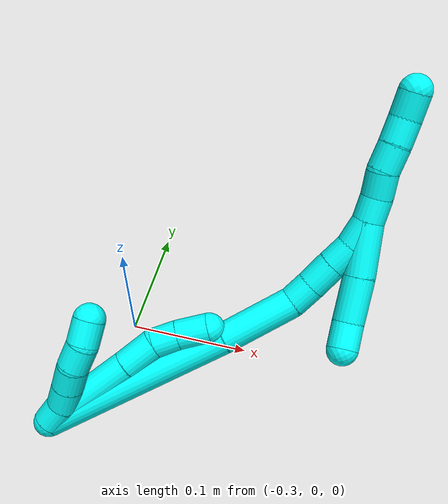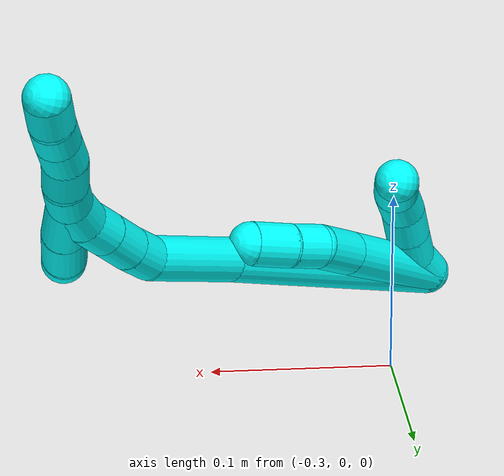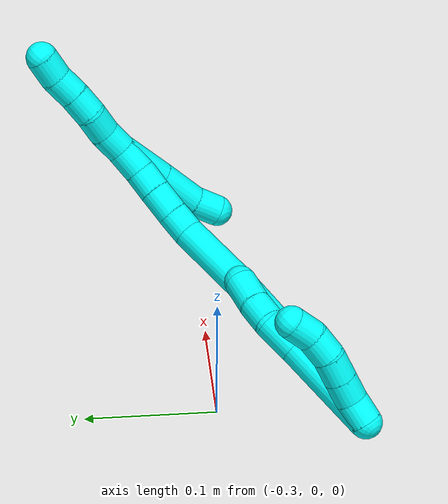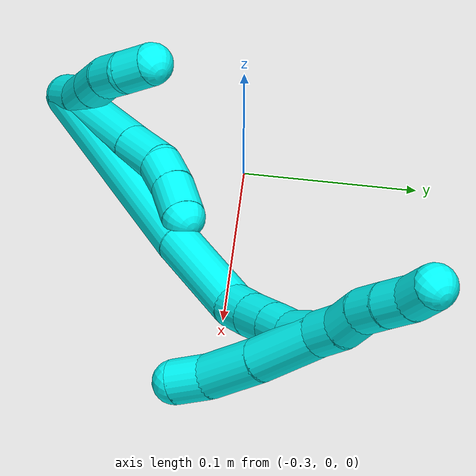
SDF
<sdf version="1.7">
 <world name="default">
  <model name="3">
   <static>0</static>
   <link name="3">
    <collision name="collision-cylinder-e_1_2_8">
     <pose>0.004031 0.005004 -0.03776 -3.00983 0.105435 -1.34921</pose>
     <geometry><cylinder><radius>0.0125</radius><length>0.076605</length></cylinder></geometry>
     <surface>
      <friction><ode><mu>1.16</mu><mu2>1.16</mu2><slip1>0</slip1><slip2>0</slip2></ode></friction>
      <contact><ode><kp>1e+06</kp><kd>1</kd><max_vel>0</max_vel><min_depth>0.001</min_depth></ode></contact>
     </surface>
    </collision>
    <visual name="visual-cylinder-e_1_2_8">
     <pose>0.004031 0.005004 -0.03776 -3.00983 0.105435 -1.34921</pose>
     <geometry><cylinder><radius>0.0125</radius><length>0.076605</length></cylinder></geometry>
     <material><ambient>0.003922 1 0.996078 1</ambient></material>
    </visual>
    <collision name="collision-cylinder-e_2_8_9">
     <pose>0.009393 0.012314 -0.089437 -2.97743 0.094057 -1.03926</pose>
     <geometry><cylinder><radius>0.0125</radius><length>0.028339</length></cylinder></geometry>
     <surface>
      <friction><ode><mu>1.16</mu><mu2>1.16</mu2><slip1>0</slip1><slip2>0</slip2></ode></friction>
      <contact><ode><kp>1e+06</kp><kd>1</kd><max_vel>0</max_vel><min_depth>0.001</min_depth></ode></contact>
     </surface>
    </collision>
    <visual name="visual-cylinder-e_2_8_9">
     <pose>0.009393 0.012314 -0.089437 -2.97743 0.094057 -1.03926</pose>
     <geometry><cylinder><radius>0.0125</radius><length>0.028339</length></cylinder></geometry>
     <material><ambient>0.003922 1 0.996078 1</ambient></material>
    </visual>
    <collision name="collision-cylinder-e_3_9_10">
     <pose>0.010192 0.013303 -0.113333 3.01038 -0.052744 -0.76357</pose>
     <geometry><cylinder><radius>0.0125</radius><length>0.020159</length></cylinder></geometry>
     <surface>
      <friction><ode><mu>1.16</mu><mu2>1.16</mu2><slip1>0</slip1><slip2>0</slip2></ode></friction>
      <contact><ode><kp>1e+06</kp><kd>1</kd><max_vel>0</max_vel><min_depth>0.001</min_depth></ode></contact>
     </surface>
    </collision>
    <visual name="visual-cylinder-e_3_9_10">
     <pose>0.010192 0.013303 -0.113333 3.01038 -0.052744 -0.76357</pose>
     <geometry><cylinder><radius>0.0125</radius><length>0.020159</length></cylinder></geometry>
     <material><ambient>0.003922 1 0.996078 1</ambient></material>
    </visual>
    <collision name="collision-cylinder-e_4_10_6">
     <pose>0.009266 0.008985 -0.135387 2.89806 -0.03168 -0.257473</pose>
     <geometry><cylinder><radius>0.0125</radius><length>0.024896</length></cylinder></geometry>
     <surface>
      <friction><ode><mu>1.16</mu><mu2>1.16</mu2><slip1>0</slip1><slip2>0</slip2></ode></friction>
      <contact><ode><kp>1e+06</kp><kd>1</kd><max_vel>0</max_vel><min_depth>0.001</min_depth></ode></contact>
     </surface>
    </collision>
    <visual name="visual-cylinder-e_4_10_6">
     <pose>0.009266 0.008985 -0.135387 2.89806 -0.03168 -0.257473</pose>
     <geometry><cylinder><radius>0.0125</radius><length>0.024896</length></cylinder></geometry>
     <material><ambient>0.003922 1 0.996078 1</ambient></material>
    </visual>
    <collision name="collision-cylinder-e_1_2_11">
     <pose>0.004382 0.002122 -0.008735 -2.90323 0.453612 -2.18429</pose>
     <geometry><cylinder><radius>0.0125</radius><length>0.02</length></cylinder></geometry>
     <surface>
      <friction><ode><mu>1.16</mu><mu2>1.16</mu2><slip1>0</slip1><slip2>0</slip2></ode></friction>
      <contact><ode><kp>1e+06</kp><kd>1</kd><max_vel>0</max_vel><min_depth>0.001</min_depth></ode></contact>
     </surface>
    </collision>
    <visual name="visual-cylinder-e_1_2_11">
     <pose>0.004382 0.002122 -0.008735 -2.90323 0.453612 -2.18429</pose>
     <geometry><cylinder><radius>0.0125</radius><length>0.02</length></cylinder></geometry>
     <material><ambient>0.003922 1 0.996078 1</ambient></material>
    </visual>
    <collision name="collision-cylinder-e_2_11_12">
     <pose>0.015323 0.007702 -0.02418 -2.66584 0.715271 -1.99051</pose>
     <geometry><cylinder><radius>0.0125</radius><length>0.02</length></cylinder></geometry>
     <surface>
      <friction><ode><mu>1.16</mu><mu2>1.16</mu2><slip1>0</slip1><slip2>0</slip2></ode></friction>
      <contact><ode><kp>1e+06</kp><kd>1</kd><max_vel>0</max_vel><min_depth>0.001</min_depth></ode></contact>
     </surface>
    </collision>
    <visual name="visual-cylinder-e_2_11_12">
     <pose>0.015323 0.007702 -0.02418 -2.66584 0.715271 -1.99051</pose>
     <geometry><cylinder><radius>0.0125</radius><length>0.02</length></cylinder></geometry>
     <material><ambient>0.003922 1 0.996078 1</ambient></material>
    </visual>
    <collision name="collision-cylinder-e_3_12_13">
     <pose>0.028481 0.014722 -0.037505 -2.64753 0.720798 -1.96213</pose>
     <geometry><cylinder><radius>0.0125</radius><length>0.02</length></cylinder></geometry>
     <surface>
      <friction><ode><mu>1.16</mu><mu2>1.16</mu2><slip1>0</slip1><slip2>0</slip2></ode></friction>
      <contact><ode><kp>1e+06</kp><kd>1</kd><max_vel>0</max_vel><min_depth>0.001</min_depth></ode></contact>
     </surface>
    </collision>
    <visual name="visual-cylinder-e_3_12_13">
     <pose>0.028481 0.014722 -0.037505 -2.64753 0.720798 -1.96213</pose>
     <geometry><cylinder><radius>0.0125</radius><length>0.02</length></cylinder></geometry>
     <material><ambient>0.003922 1 0.996078 1</ambient></material>
    </visual>
    <collision name="collision-cylinder-e_4_13_14">
     <pose>0.03986 0.022458 -0.051849 -2.64652 0.498308 -1.57758</pose>
     <geometry><cylinder><radius>0.0125</radius><length>0.02</length></cylinder></geometry>
     <surface>
      <friction><ode><mu>1.16</mu><mu2>1.16</mu2><slip1>0</slip1><slip2>0</slip2></ode></friction>
      <contact><ode><kp>1e+06</kp><kd>1</kd><max_vel>0</max_vel><min_depth>0.001</min_depth></ode></contact>
     </surface>
    </collision>
    <visual name="visual-cylinder-e_4_13_14">
     <pose>0.03986 0.022458 -0.051849 -2.64652 0.498308 -1.57758</pose>
     <geometry><cylinder><radius>0.0125</radius><length>0.02</length></cylinder></geometry>
     <material><ambient>0.003922 1 0.996078 1</ambient></material>
    </visual>
    <collision name="collision-cylinder-e_5_14_5">
     <pose>0.047962 0.033219 -0.066328 -2.36833 0.33873 -0.795306</pose>
     <geometry><cylinder><radius>0.0125</radius><length>0.02</length></cylinder></geometry>
     <surface>
      <friction><ode><mu>1.16</mu><mu2>1.16</mu2><slip1>0</slip1><slip2>0</slip2></ode></friction>
      <contact><ode><kp>1e+06</kp><kd>1</kd><max_vel>0</max_vel><min_depth>0.001</min_depth></ode></contact>
     </surface>
    </collision>
    <visual name="visual-cylinder-e_5_14_5">
     <pose>0.047962 0.033219 -0.066328 -2.36833 0.33873 -0.795306</pose>
     <geometry><cylinder><radius>0.0125</radius><length>0.02</length></cylinder></geometry>
     <material><ambient>0.003922 1 0.996078 1</ambient></material>
    </visual>
    <collision name="collision-cylinder-e_1_2_15">
     <pose>-0.000557 -0.001605 -0.076591 3.12064 -0.007273 -0.668263</pose>
     <geometry><cylinder><radius>0.0125</radius><length>0.15322</length></cylinder></geometry>
     <surface>
      <friction><ode><mu>1.16</mu><mu2>1.16</mu2><slip1>0</slip1><slip2>0</slip2></ode></friction>
      <contact><ode><kp>1e+06</kp><kd>1</kd><max_vel>0</max_vel><min_depth>0.001</min_depth></ode></contact>
     </surface>
    </collision>
    <visual name="visual-cylinder-e_1_2_15">
     <pose>-0.000557 -0.001605 -0.076591 3.12064 -0.007273 -0.668263</pose>
     <geometry><cylinder><radius>0.0125</radius><length>0.15322</length></cylinder></geometry>
     <material><ambient>0.003922 1 0.996078 1</ambient></material>
    </visual>
    <collision name="collision-cylinder-e_2_15_16">
     <pose>-0.002153 -0.002125 -0.183775 -3.10615 -0.033917 1.52665</pose>
     <geometry><cylinder><radius>0.0125</radius><length>0.061258</length></cylinder></geometry>
     <surface>
      <friction><ode><mu>1.16</mu><mu2>1.16</mu2><slip1>0</slip1><slip2>0</slip2></ode></friction>
      <contact><ode><kp>1e+06</kp><kd>1</kd><max_vel>0</max_vel><min_depth>0.001</min_depth></ode></contact>
     </surface>
    </collision>
    <visual name="visual-cylinder-e_2_15_16">
     <pose>-0.002153 -0.002125 -0.183775 -3.10615 -0.033917 1.52665</pose>
     <geometry><cylinder><radius>0.0125</radius><length>0.061258</length></cylinder></geometry>
     <material><ambient>0.003922 1 0.996078 1</ambient></material>
    </visual>
    <collision name="collision-cylinder-e_3_16_17">
     <pose>-0.000693 0.000893 -0.223945 -2.94242 0.250375 -1.79951</pose>
     <geometry><cylinder><radius>0.0125</radius><length>0.020171</length></cylinder></geometry>
     <surface>
      <friction><ode><mu>1.16</mu><mu2>1.16</mu2><slip1>0</slip1><slip2>0</slip2></ode></friction>
      <contact><ode><kp>1e+06</kp><kd>1</kd><max_vel>0</max_vel><min_depth>0.001</min_depth></ode></contact>
     </surface>
    </collision>
    <visual name="visual-cylinder-e_3_16_17">
     <pose>-0.000693 0.000893 -0.223945 -2.94242 0.250375 -1.79951</pose>
     <geometry><cylinder><radius>0.0125</radius><length>0.020171</length></cylinder></geometry>
     <material><ambient>0.003922 1 0.996078 1</ambient></material>
    </visual>
    <collision name="collision-cylinder-e_4_17_18">
     <pose>0.005274 0.005143 -0.244102 -2.9261 0.309886 -1.93024</pose>
     <geometry><cylinder><radius>0.0125</radius><length>0.022744</length></cylinder></geometry>
     <surface>
      <friction><ode><mu>1.16</mu><mu2>1.16</mu2><slip1>0</slip1><slip2>0</slip2></ode></friction>
      <contact><ode><kp>1e+06</kp><kd>1</kd><max_vel>0</max_vel><min_depth>0.001</min_depth></ode></contact>
     </surface>
    </collision>
    <visual name="visual-cylinder-e_4_17_18">
     <pose>0.005274 0.005143 -0.244102 -2.9261 0.309886 -1.93024</pose>
     <geometry><cylinder><radius>0.0125</radius><length>0.022744</length></cylinder></geometry>
     <material><ambient>0.003922 1 0.996078 1</ambient></material>
    </visual>
    <collision name="collision-cylinder-e_5_18_19">
     <pose>0.011819 0.009286 -0.264093 -2.94975 0.310581 -2.03942</pose>
     <geometry><cylinder><radius>0.0125</radius><length>0.020138</length></cylinder></geometry>
     <surface>
      <friction><ode><mu>1.16</mu><mu2>1.16</mu2><slip1>0</slip1><slip2>0</slip2></ode></friction>
      <contact><ode><kp>1e+06</kp><kd>1</kd><max_vel>0</max_vel><min_depth>0.001</min_depth></ode></contact>
     </surface>
    </collision>
    <visual name="visual-cylinder-e_5_18_19">
     <pose>0.011819 0.009286 -0.264093 -2.94975 0.310581 -2.03942</pose>
     <geometry><cylinder><radius>0.0125</radius><length>0.020138</length></cylinder></geometry>
     <material><ambient>0.003922 1 0.996078 1</ambient></material>
    </visual>
    <collision name="collision-cylinder-e_6_19_1">
     <pose>0.019468 0.015345 -0.282855 -2.7167 0.419056 -1.55655</pose>
     <geometry><cylinder><radius>0.0125</radius><length>0.022469</length></cylinder></geometry>
     <surface>
      <friction><ode><mu>1.16</mu><mu2>1.16</mu2><slip1>0</slip1><slip2>0</slip2></ode></friction>
      <contact><ode><kp>1e+06</kp><kd>1</kd><max_vel>0</max_vel><min_depth>0.001</min_depth></ode></contact>
     </surface>
    </collision>
    <visual name="visual-cylinder-e_6_19_1">
     <pose>0.019468 0.015345 -0.282855 -2.7167 0.419056 -1.55655</pose>
     <geometry><cylinder><radius>0.0125</radius><length>0.022469</length></cylinder></geometry>
     <material><ambient>0.003922 1 0.996078 1</ambient></material>
    </visual>
    <collision name="collision-cylinder-e_1_1_20">
     <pose>0.028754 0.025132 -0.299052 -2.45987 0.491013 -1.23</pose>
     <geometry><cylinder><radius>0.0125</radius><length>0.02</length></cylinder></geometry>
     <surface>
      <friction><ode><mu>1.16</mu><mu2>1.16</mu2><slip1>0</slip1><slip2>0</slip2></ode></friction>
      <contact><ode><kp>1e+06</kp><kd>1</kd><max_vel>0</max_vel><min_depth>0.001</min_depth></ode></contact>
     </surface>
    </collision>
    <visual name="visual-cylinder-e_1_1_20">
     <pose>0.028754 0.025132 -0.299052 -2.45987 0.491013 -1.23</pose>
     <geometry><cylinder><radius>0.0125</radius><length>0.02</length></cylinder></geometry>
     <material><ambient>0.003922 1 0.996078 1</ambient></material>
    </visual>
    <collision name="collision-cylinder-e_2_20_21">
     <pose>0.039952 0.036034 -0.311322 -2.3633 0.705319 -1.46291</pose>
     <geometry><cylinder><radius>0.0125</radius><length>0.02</length></cylinder></geometry>
     <surface>
      <friction><ode><mu>1.16</mu><mu2>1.16</mu2><slip1>0</slip1><slip2>0</slip2></ode></friction>
      <contact><ode><kp>1e+06</kp><kd>1</kd><max_vel>0</max_vel><min_depth>0.001</min_depth></ode></contact>
     </surface>
    </collision>
    <visual name="visual-cylinder-e_2_20_21">
     <pose>0.039952 0.036034 -0.311322 -2.3633 0.705319 -1.46291</pose>
     <geometry><cylinder><radius>0.0125</radius><length>0.02</length></cylinder></geometry>
     <material><ambient>0.003922 1 0.996078 1</ambient></material>
    </visual>
    <collision name="collision-cylinder-e_3_21_22">
     <pose>0.05139 0.046134 -0.324013 -2.56247 0.518463 -1.45466</pose>
     <geometry><cylinder><radius>0.0125</radius><length>0.02</length></cylinder></geometry>
     <surface>
      <friction><ode><mu>1.16</mu><mu2>1.16</mu2><slip1>0</slip1><slip2>0</slip2></ode></friction>
      <contact><ode><kp>1e+06</kp><kd>1</kd><max_vel>0</max_vel><min_depth>0.001</min_depth></ode></contact>
     </surface>
    </collision>
    <visual name="visual-cylinder-e_3_21_22">
     <pose>0.05139 0.046134 -0.324013 -2.56247 0.518463 -1.45466</pose>
     <geometry><cylinder><radius>0.0125</radius><length>0.02</length></cylinder></geometry>
     <material><ambient>0.003922 1 0.996078 1</ambient></material>
    </visual>
    <collision name="collision-cylinder-e_4_22_23">
     <pose>0.060729 0.056338 -0.33843 -2.49009 0.453712 -1.19895</pose>
     <geometry><cylinder><radius>0.0125</radius><length>0.02</length></cylinder></geometry>
     <surface>
      <friction><ode><mu>1.16</mu><mu2>1.16</mu2><slip1>0</slip1><slip2>0</slip2></ode></friction>
      <contact><ode><kp>1e+06</kp><kd>1</kd><max_vel>0</max_vel><min_depth>0.001</min_depth></ode></contact>
     </surface>
    </collision>
    <visual name="visual-cylinder-e_4_22_23">
     <pose>0.060729 0.056338 -0.33843 -2.49009 0.453712 -1.19895</pose>
     <geometry><cylinder><radius>0.0125</radius><length>0.02</length></cylinder></geometry>
     <material><ambient>0.003922 1 0.996078 1</ambient></material>
    </visual>
    <collision name="collision-cylinder-e_5_23_4">
     <pose>0.07127 0.066421 -0.351951 -2.51302 0.663362 -1.62858</pose>
     <geometry><cylinder><radius>0.0125</radius><length>0.02</length></cylinder></geometry>
     <surface>
      <friction><ode><mu>1.16</mu><mu2>1.16</mu2><slip1>0</slip1><slip2>0</slip2></ode></friction>
      <contact><ode><kp>1e+06</kp><kd>1</kd><max_vel>0</max_vel><min_depth>0.001</min_depth></ode></contact>
     </surface>
    </collision>
    <visual name="visual-cylinder-e_5_23_4">
     <pose>0.07127 0.066421 -0.351951 -2.51302 0.663362 -1.62858</pose>
     <geometry><cylinder><radius>0.0125</radius><length>0.02</length></cylinder></geometry>
     <material><ambient>0.003922 1 0.996078 1</ambient></material>
    </visual>
    <collision name="collision-cylinder-e_1_1_24">
     <pose>0.015349 0.004596 -0.280309 0.899629 -0.42644 -0.208318</pose>
     <geometry><cylinder><radius>0.0125</radius><length>0.042018</length></cylinder></geometry>
     <surface>
      <friction><ode><mu>1.16</mu><mu2>1.16</mu2><slip1>0</slip1><slip2>0</slip2></ode></friction>
      <contact><ode><kp>1e+06</kp><kd>1</kd><max_vel>0</max_vel><min_depth>0.001</min_depth></ode></contact>
     </surface>
    </collision>
    <visual name="visual-cylinder-e_1_1_24">
     <pose>0.015349 0.004596 -0.280309 0.899629 -0.42644 -0.208318</pose>
     <geometry><cylinder><radius>0.0125</radius><length>0.042018</length></cylinder></geometry>
     <material><ambient>0.003922 1 0.996078 1</ambient></material>
    </visual>
    <collision name="collision-cylinder-e_2_24_25">
     <pose>-0.000482 -0.022639 -0.256935 0.818186 -0.402078 -0.176252</pose>
     <geometry><cylinder><radius>0.0125</radius><length>0.036495</length></cylinder></geometry>
     <surface>
      <friction><ode><mu>1.16</mu><mu2>1.16</mu2><slip1>0</slip1><slip2>0</slip2></ode></friction>
      <contact><ode><kp>1e+06</kp><kd>1</kd><max_vel>0</max_vel><min_depth>0.001</min_depth></ode></contact>
     </surface>
    </collision>
    <visual name="visual-cylinder-e_2_24_25">
     <pose>-0.000482 -0.022639 -0.256935 0.818186 -0.402078 -0.176252</pose>
     <geometry><cylinder><radius>0.0125</radius><length>0.036495</length></cylinder></geometry>
     <material><ambient>0.003922 1 0.996078 1</ambient></material>
    </visual>
    <collision name="collision-cylinder-e_3_25_3">
     <pose>-0.009285 -0.04302 -0.238626 0.87168 -0.155328 -0.072452</pose>
     <geometry><cylinder><radius>0.0125</radius><length>0.021486</length></cylinder></geometry>
     <surface>
      <friction><ode><mu>1.16</mu><mu2>1.16</mu2><slip1>0</slip1><slip2>0</slip2></ode></friction>
      <contact><ode><kp>1e+06</kp><kd>1</kd><max_vel>0</max_vel><min_depth>0.001</min_depth></ode></contact>
     </surface>
    </collision>
    <visual name="visual-cylinder-e_3_25_3">
     <pose>-0.009285 -0.04302 -0.238626 0.87168 -0.155328 -0.072452</pose>
     <geometry><cylinder><radius>0.0125</radius><length>0.021486</length></cylinder></geometry>
     <material><ambient>0.003922 1 0.996078 1</ambient></material>
    </visual>
    <collision name="collision-sphere-3">
     <pose>-0.010947 -0.051144 -0.231796 0 -0 0</pose>
     <geometry><sphere><radius>0.0125</radius></sphere></geometry>
     <surface>
      <friction><ode><mu>1.16</mu><mu2>1.16</mu2><slip1>0</slip1><slip2>0</slip2></ode></friction>
      <contact><ode><kp>1e+06</kp><kd>1</kd><max_vel>0</max_vel><min_depth>0.001</min_depth></ode></contact>
     </surface>
    </collision>
    <visual name="visual-sphere-3">
     <pose>-0.010947 -0.051144 -0.231796 0 -0 0</pose>
     <geometry><sphere><radius>0.0125</radius></sphere></geometry>
     <material><ambient>0.003922 1 0.996078 1</ambient></material>
    </visual>
    <collision name="collision-sphere-25">
     <pose>-0.007623 -0.034896 -0.245457 0 -0 0</pose>
     <geometry><sphere><radius>0.0125</radius></sphere></geometry>
     <surface>
      <friction><ode><mu>1.16</mu><mu2>1.16</mu2><slip1>0</slip1><slip2>0</slip2></ode></friction>
      <contact><ode><kp>1e+06</kp><kd>1</kd><max_vel>0</max_vel><min_depth>0.001</min_depth></ode></contact>
     </surface>
    </collision>
    <visual name="visual-sphere-25">
     <pose>-0.007623 -0.034896 -0.245457 0 -0 0</pose>
     <geometry><sphere><radius>0.0125</radius></sphere></geometry>
     <material><ambient>0.003922 1 0.996078 1</ambient></material>
    </visual>
    <collision name="collision-sphere-24">
     <pose>0.006659 -0.010382 -0.268414 0 -0 0</pose>
     <geometry><sphere><radius>0.0125</radius></sphere></geometry>
     <surface>
      <friction><ode><mu>1.16</mu><mu2>1.16</mu2><slip1>0</slip1><slip2>0</slip2></ode></friction>
      <contact><ode><kp>1e+06</kp><kd>1</kd><max_vel>0</max_vel><min_depth>0.001</min_depth></ode></contact>
     </surface>
    </collision>
    <visual name="visual-sphere-24">
     <pose>0.006659 -0.010382 -0.268414 0 -0 0</pose>
     <geometry><sphere><radius>0.0125</radius></sphere></geometry>
     <material><ambient>0.003922 1 0.996078 1</ambient></material>
    </visual>
    <collision name="collision-sphere-4">
     <pose>0.077427 0.071054 -0.358324 0 -0 0</pose>
     <geometry><sphere><radius>0.0125</radius></sphere></geometry>
     <surface>
      <friction><ode><mu>1.16</mu><mu2>1.16</mu2><slip1>0</slip1><slip2>0</slip2></ode></friction>
      <contact><ode><kp>1e+06</kp><kd>1</kd><max_vel>0</max_vel><min_depth>0.001</min_depth></ode></contact>
     </surface>
    </collision>
    <visual name="visual-sphere-4">
     <pose>0.077427 0.071054 -0.358324 0 -0 0</pose>
     <geometry><sphere><radius>0.0125</radius></sphere></geometry>
     <material><ambient>0.003922 1 0.996078 1</ambient></material>
    </visual>
    <collision name="collision-sphere-23">
     <pose>0.065112 0.061788 -0.345577 0 -0 0</pose>
     <geometry><sphere><radius>0.0125</radius></sphere></geometry>
     <surface>
      <friction><ode><mu>1.16</mu><mu2>1.16</mu2><slip1>0</slip1><slip2>0</slip2></ode></friction>
      <contact><ode><kp>1e+06</kp><kd>1</kd><max_vel>0</max_vel><min_depth>0.001</min_depth></ode></contact>
     </surface>
    </collision>
    <visual name="visual-sphere-23">
     <pose>0.065112 0.061788 -0.345577 0 -0 0</pose>
     <geometry><sphere><radius>0.0125</radius></sphere></geometry>
     <material><ambient>0.003922 1 0.996078 1</ambient></material>
    </visual>
    <collision name="collision-sphere-22">
     <pose>0.056346 0.050887 -0.331283 0 -0 0</pose>
     <geometry><sphere><radius>0.0125</radius></sphere></geometry>
     <surface>
      <friction><ode><mu>1.16</mu><mu2>1.16</mu2><slip1>0</slip1><slip2>0</slip2></ode></friction>
      <contact><ode><kp>1e+06</kp><kd>1</kd><max_vel>0</max_vel><min_depth>0.001</min_depth></ode></contact>
     </surface>
    </collision>
    <visual name="visual-sphere-22">
     <pose>0.056346 0.050887 -0.331283 0 -0 0</pose>
     <geometry><sphere><radius>0.0125</radius></sphere></geometry>
     <material><ambient>0.003922 1 0.996078 1</ambient></material>
    </visual>
    <collision name="collision-sphere-21">
     <pose>0.046435 0.04138 -0.316744 0 -0 0</pose>
     <geometry><sphere><radius>0.0125</radius></sphere></geometry>
     <surface>
      <friction><ode><mu>1.16</mu><mu2>1.16</mu2><slip1>0</slip1><slip2>0</slip2></ode></friction>
      <contact><ode><kp>1e+06</kp><kd>1</kd><max_vel>0</max_vel><min_depth>0.001</min_depth></ode></contact>
     </surface>
    </collision>
    <visual name="visual-sphere-21">
     <pose>0.046435 0.04138 -0.316744 0 -0 0</pose>
     <geometry><sphere><radius>0.0125</radius></sphere></geometry>
     <material><ambient>0.003922 1 0.996078 1</ambient></material>
    </visual>
    <collision name="collision-sphere-20">
     <pose>0.033469 0.030689 -0.3059 0 -0 0</pose>
     <geometry><sphere><radius>0.0125</radius></sphere></geometry>
     <surface>
      <friction><ode><mu>1.16</mu><mu2>1.16</mu2><slip1>0</slip1><slip2>0</slip2></ode></friction>
      <contact><ode><kp>1e+06</kp><kd>1</kd><max_vel>0</max_vel><min_depth>0.001</min_depth></ode></contact>
     </surface>
    </collision>
    <visual name="visual-sphere-20">
     <pose>0.033469 0.030689 -0.3059 0 -0 0</pose>
     <geometry><sphere><radius>0.0125</radius></sphere></geometry>
     <material><ambient>0.003922 1 0.996078 1</ambient></material>
    </visual>
    <collision name="collision-sphere-11">
     <pose>0.008764 0.004245 -0.017469 0 -0 0</pose>
     <geometry><sphere><radius>0.0125</radius></sphere></geometry>
     <surface>
      <friction><ode><mu>1.16</mu><mu2>1.16</mu2><slip1>0</slip1><slip2>0</slip2></ode></friction>
      <contact><ode><kp>1e+06</kp><kd>1</kd><max_vel>0</max_vel><min_depth>0.001</min_depth></ode></contact>
     </surface>
    </collision>
    <visual name="visual-sphere-11">
     <pose>0.008764 0.004245 -0.017469 0 -0 0</pose>
     <geometry><sphere><radius>0.0125</radius></sphere></geometry>
     <material><ambient>0.003922 1 0.996078 1</ambient></material>
    </visual>
    <collision name="collision-sphere-6">
     <pose>0.008872 0.005985 -0.147462 0 -0 0</pose>
     <geometry><sphere><radius>0.0125</radius></sphere></geometry>
     <surface>
      <friction><ode><mu>1.16</mu><mu2>1.16</mu2><slip1>0</slip1><slip2>0</slip2></ode></friction>
      <contact><ode><kp>1e+06</kp><kd>1</kd><max_vel>0</max_vel><min_depth>0.001</min_depth></ode></contact>
     </surface>
    </collision>
    <visual name="visual-sphere-6">
     <pose>0.008872 0.005985 -0.147462 0 -0 0</pose>
     <geometry><sphere><radius>0.0125</radius></sphere></geometry>
     <material><ambient>0.003922 1 0.996078 1</ambient></material>
    </visual>
    <collision name="collision-sphere-10">
     <pose>0.009661 0.011986 -0.123312 0 -0 0</pose>
     <geometry><sphere><radius>0.0125</radius></sphere></geometry>
     <surface>
      <friction><ode><mu>1.16</mu><mu2>1.16</mu2><slip1>0</slip1><slip2>0</slip2></ode></friction>
      <contact><ode><kp>1e+06</kp><kd>1</kd><max_vel>0</max_vel><min_depth>0.001</min_depth></ode></contact>
     </surface>
    </collision>
    <visual name="visual-sphere-10">
     <pose>0.009661 0.011986 -0.123312 0 -0 0</pose>
     <geometry><sphere><radius>0.0125</radius></sphere></geometry>
     <material><ambient>0.003922 1 0.996078 1</ambient></material>
    </visual>
    <collision name="collision-sphere-9">
     <pose>0.010723 0.01462 -0.103354 0 -0 0</pose>
     <geometry><sphere><radius>0.0125</radius></sphere></geometry>
     <surface>
      <friction><ode><mu>1.16</mu><mu2>1.16</mu2><slip1>0</slip1><slip2>0</slip2></ode></friction>
      <contact><ode><kp>1e+06</kp><kd>1</kd><max_vel>0</max_vel><min_depth>0.001</min_depth></ode></contact>
     </surface>
    </collision>
    <visual name="visual-sphere-9">
     <pose>0.010723 0.01462 -0.103354 0 -0 0</pose>
     <geometry><sphere><radius>0.0125</radius></sphere></geometry>
     <material><ambient>0.003922 1 0.996078 1</ambient></material>
    </visual>
    <collision name="collision-sphere-2">
     <geometry><sphere><radius>0.0125</radius></sphere></geometry>
     <surface>
      <friction><ode><mu>1.16</mu><mu2>1.16</mu2><slip1>0</slip1><slip2>0</slip2></ode></friction>
      <contact><ode><kp>1e+06</kp><kd>1</kd><max_vel>0</max_vel><min_depth>0.001</min_depth></ode></contact>
     </surface>
    </collision>
    <visual name="visual-sphere-2">
     <geometry><sphere><radius>0.0125</radius></sphere></geometry>
     <material><ambient>0.003922 1 0.996078 1</ambient></material>
    </visual>
    <collision name="collision-sphere-19">
     <pose>0.014896 0.011114 -0.273505 0 -0 0</pose>
     <geometry><sphere><radius>0.0125</radius></sphere></geometry>
     <surface>
      <friction><ode><mu>1.16</mu><mu2>1.16</mu2><slip1>0</slip1><slip2>0</slip2></ode></friction>
      <contact><ode><kp>1e+06</kp><kd>1</kd><max_vel>0</max_vel><min_depth>0.001</min_depth></ode></contact>
     </surface>
    </collision>
    <visual name="visual-sphere-19">
     <pose>0.014896 0.011114 -0.273505 0 -0 0</pose>
     <geometry><sphere><radius>0.0125</radius></sphere></geometry>
     <material><ambient>0.003922 1 0.996078 1</ambient></material>
    </visual>
    <collision name="collision-sphere-8">
     <pose>0.008062 0.010009 -0.07552 0 -0 0</pose>
     <geometry><sphere><radius>0.0125</radius></sphere></geometry>
     <surface>
      <friction><ode><mu>1.16</mu><mu2>1.16</mu2><slip1>0</slip1><slip2>0</slip2></ode></friction>
      <contact><ode><kp>1e+06</kp><kd>1</kd><max_vel>0</max_vel><min_depth>0.001</min_depth></ode></contact>
     </surface>
    </collision>
    <visual name="visual-sphere-8">
     <pose>0.008062 0.010009 -0.07552 0 -0 0</pose>
     <geometry><sphere><radius>0.0125</radius></sphere></geometry>
     <material><ambient>0.003922 1 0.996078 1</ambient></material>
    </visual>
    <collision name="collision-sphere-12">
     <pose>0.021881 0.01116 -0.030891 0 -0 0</pose>
     <geometry><sphere><radius>0.0125</radius></sphere></geometry>
     <surface>
      <friction><ode><mu>1.16</mu><mu2>1.16</mu2><slip1>0</slip1><slip2>0</slip2></ode></friction>
      <contact><ode><kp>1e+06</kp><kd>1</kd><max_vel>0</max_vel><min_depth>0.001</min_depth></ode></contact>
     </surface>
    </collision>
    <visual name="visual-sphere-12">
     <pose>0.021881 0.01116 -0.030891 0 -0 0</pose>
     <geometry><sphere><radius>0.0125</radius></sphere></geometry>
     <material><ambient>0.003922 1 0.996078 1</ambient></material>
    </visual>
    <collision name="collision-sphere-13">
     <pose>0.03508 0.018285 -0.044119 0 -0 0</pose>
     <geometry><sphere><radius>0.0125</radius></sphere></geometry>
     <surface>
      <friction><ode><mu>1.16</mu><mu2>1.16</mu2><slip1>0</slip1><slip2>0</slip2></ode></friction>
      <contact><ode><kp>1e+06</kp><kd>1</kd><max_vel>0</max_vel><min_depth>0.001</min_depth></ode></contact>
     </surface>
    </collision>
    <visual name="visual-sphere-13">
     <pose>0.03508 0.018285 -0.044119 0 -0 0</pose>
     <geometry><sphere><radius>0.0125</radius></sphere></geometry>
     <material><ambient>0.003922 1 0.996078 1</ambient></material>
    </visual>
    <collision name="collision-sphere-14">
     <pose>0.044639 0.026631 -0.059578 0 -0 0</pose>
     <geometry><sphere><radius>0.0125</radius></sphere></geometry>
     <surface>
      <friction><ode><mu>1.16</mu><mu2>1.16</mu2><slip1>0</slip1><slip2>0</slip2></ode></friction>
      <contact><ode><kp>1e+06</kp><kd>1</kd><max_vel>0</max_vel><min_depth>0.001</min_depth></ode></contact>
     </surface>
    </collision>
    <visual name="visual-sphere-14">
     <pose>0.044639 0.026631 -0.059578 0 -0 0</pose>
     <geometry><sphere><radius>0.0125</radius></sphere></geometry>
     <material><ambient>0.003922 1 0.996078 1</ambient></material>
    </visual>
    <collision name="collision-sphere-5">
     <pose>0.051285 0.039807 -0.073077 0 -0 0</pose>
     <geometry><sphere><radius>0.0125</radius></sphere></geometry>
     <surface>
      <friction><ode><mu>1.16</mu><mu2>1.16</mu2><slip1>0</slip1><slip2>0</slip2></ode></friction>
      <contact><ode><kp>1e+06</kp><kd>1</kd><max_vel>0</max_vel><min_depth>0.001</min_depth></ode></contact>
     </surface>
    </collision>
    <visual name="visual-sphere-5">
     <pose>0.051285 0.039807 -0.073077 0 -0 0</pose>
     <geometry><sphere><radius>0.0125</radius></sphere></geometry>
     <material><ambient>0.003922 1 0.996078 1</ambient></material>
    </visual>
    <collision name="collision-sphere-15">
     <pose>-0.001114 -0.00321 -0.153183 0 -0 0</pose>
     <geometry><sphere><radius>0.0125</radius></sphere></geometry>
     <surface>
      <friction><ode><mu>1.16</mu><mu2>1.16</mu2><slip1>0</slip1><slip2>0</slip2></ode></friction>
      <contact><ode><kp>1e+06</kp><kd>1</kd><max_vel>0</max_vel><min_depth>0.001</min_depth></ode></contact>
     </surface>
    </collision>
    <visual name="visual-sphere-15">
     <pose>-0.001114 -0.00321 -0.153183 0 -0 0</pose>
     <geometry><sphere><radius>0.0125</radius></sphere></geometry>
     <material><ambient>0.003922 1 0.996078 1</ambient></material>
    </visual>
    <collision name="collision-sphere-16">
     <pose>-0.003192 -0.00104 -0.214367 0 -0 0</pose>
     <geometry><sphere><radius>0.0125</radius></sphere></geometry>
     <surface>
      <friction><ode><mu>1.16</mu><mu2>1.16</mu2><slip1>0</slip1><slip2>0</slip2></ode></friction>
      <contact><ode><kp>1e+06</kp><kd>1</kd><max_vel>0</max_vel><min_depth>0.001</min_depth></ode></contact>
     </surface>
    </collision>
    <visual name="visual-sphere-16">
     <pose>-0.003192 -0.00104 -0.214367 0 -0 0</pose>
     <geometry><sphere><radius>0.0125</radius></sphere></geometry>
     <material><ambient>0.003922 1 0.996078 1</ambient></material>
    </visual>
    <collision name="collision-sphere-17">
     <pose>0.001806 0.002827 -0.233522 0 -0 0</pose>
     <geometry><sphere><radius>0.0125</radius></sphere></geometry>
     <surface>
      <friction><ode><mu>1.16</mu><mu2>1.16</mu2><slip1>0</slip1><slip2>0</slip2></ode></friction>
      <contact><ode><kp>1e+06</kp><kd>1</kd><max_vel>0</max_vel><min_depth>0.001</min_depth></ode></contact>
     </surface>
    </collision>
    <visual name="visual-sphere-17">
     <pose>0.001806 0.002827 -0.233522 0 -0 0</pose>
     <geometry><sphere><radius>0.0125</radius></sphere></geometry>
     <material><ambient>0.003922 1 0.996078 1</ambient></material>
    </visual>
    <collision name="collision-sphere-18">
     <pose>0.008742 0.007458 -0.254682 0 -0 0</pose>
     <geometry><sphere><radius>0.0125</radius></sphere></geometry>
     <surface>
      <friction><ode><mu>1.16</mu><mu2>1.16</mu2><slip1>0</slip1><slip2>0</slip2></ode></friction>
      <contact><ode><kp>1e+06</kp><kd>1</kd><max_vel>0</max_vel><min_depth>0.001</min_depth></ode></contact>
     </surface>
    </collision>
    <visual name="visual-sphere-18">
     <pose>0.008742 0.007458 -0.254682 0 -0 0</pose>
     <geometry><sphere><radius>0.0125</radius></sphere></geometry>
     <material><ambient>0.003922 1 0.996078 1</ambient></material>
    </visual>
    <collision name="collision-sphere-1">
     <pose>0.024039 0.019575 -0.292205 0 -0 0</pose>
     <geometry><sphere><radius>0.0125</radius></sphere></geometry>
     <surface>
      <friction><ode><mu>1.16</mu><mu2>1.16</mu2><slip1>0</slip1><slip2>0</slip2></ode></friction>
      <contact><ode><kp>1e+06</kp><kd>1</kd><max_vel>0</max_vel><min_depth>0.001</min_depth></ode></contact>
     </surface>
    </collision>
    <visual name="visual-sphere-1">
     <pose>0.024039 0.019575 -0.292205 0 -0 0</pose>
     <geometry><sphere><radius>0.0125</radius></sphere></geometry>
     <material><ambient>0.003922 1 0.996078 1</ambient></material>
    </visual>
    <inertial>
     <pose>0.01302 0.008218 -0.157824 0 -0 0</pose>
     <mass>0.75</mass>
     <inertia>
      <ixx>4.4e-05</ixx>
      <ixy>0</ixy>
      <ixz>0</ixz>
      <iyy>-0.000465</iyy>
      <iyz>0</iyz>
      <izz>-4.3e-05</izz>
     </inertia>
    </inertial>
   </link>
   <pose>-0.334164 -0.1078 0.011497 2.61813 -1.21463 -1.97499</pose>
  </model>
 </world>
</sdf>
